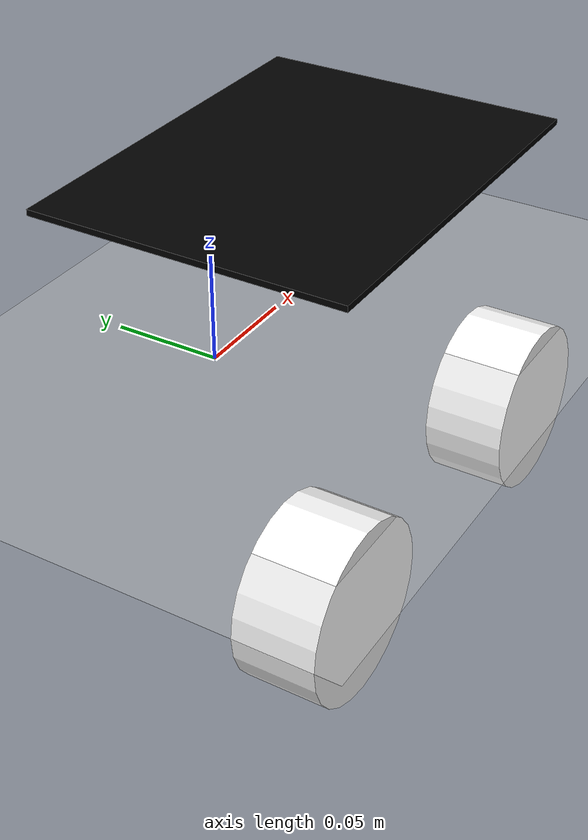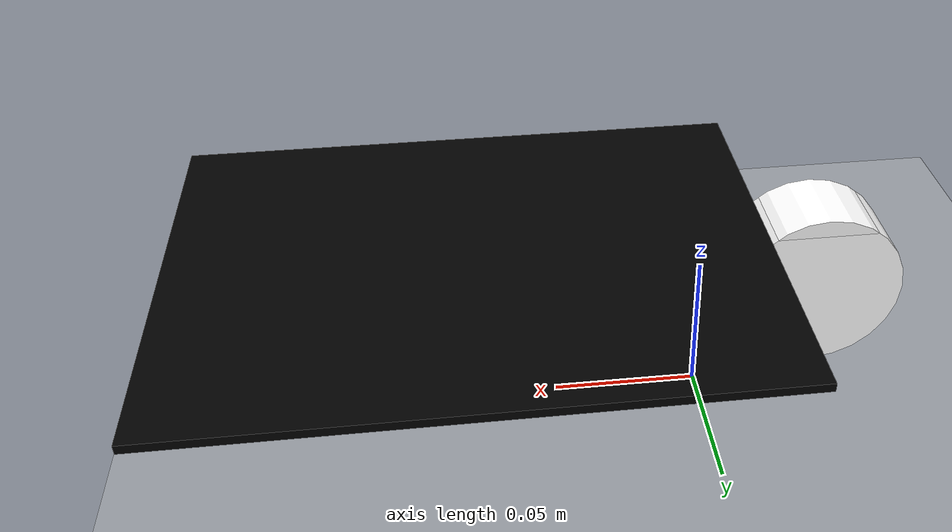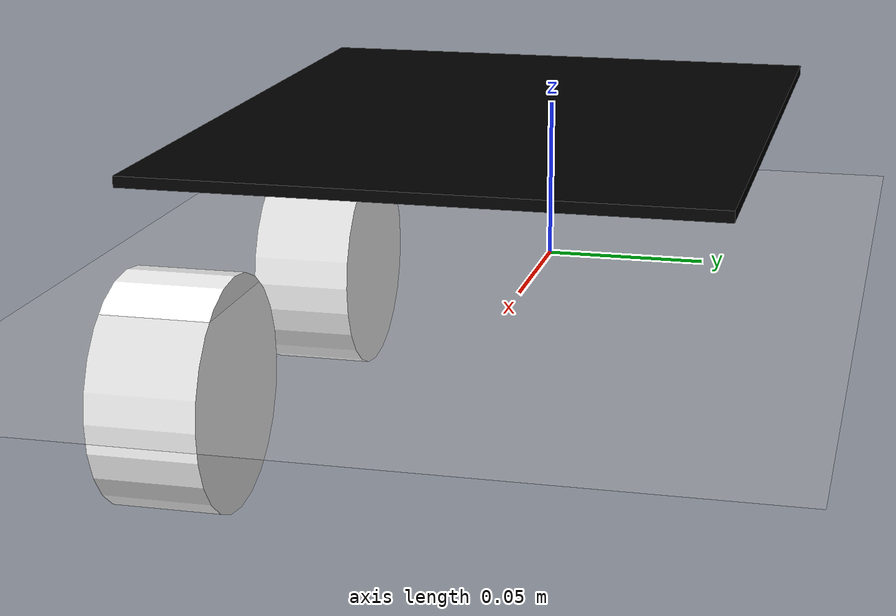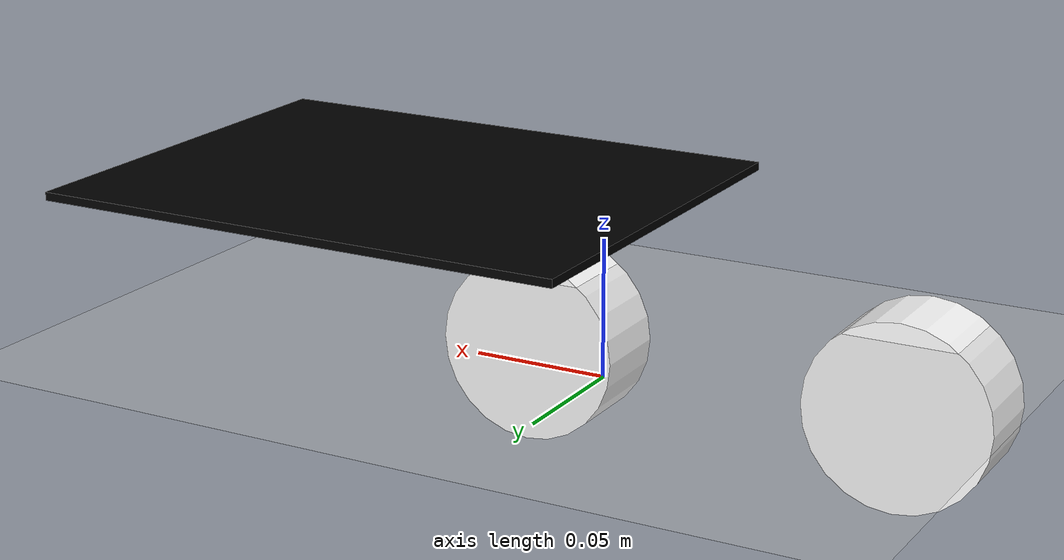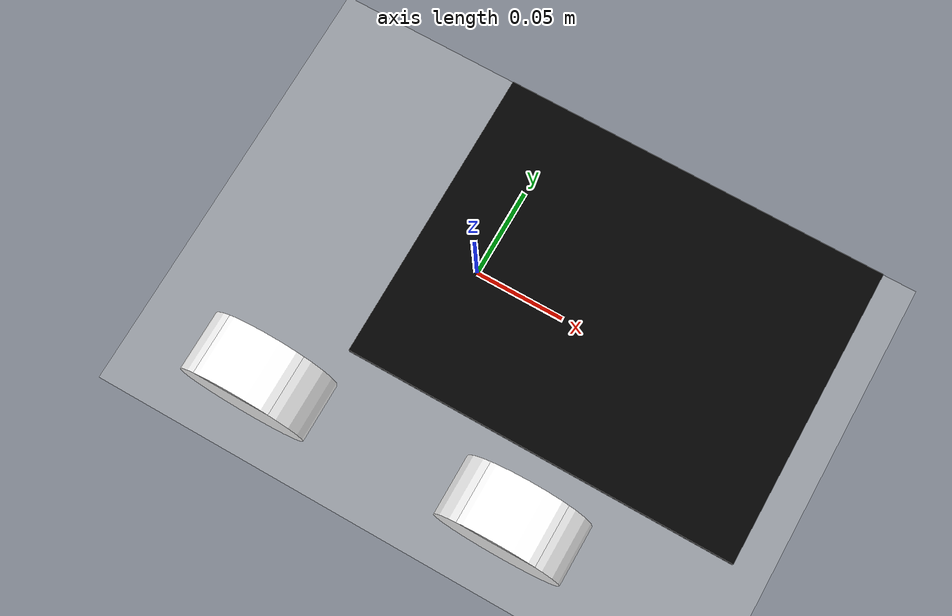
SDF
<?xml version="1.0" ?>
<sdf version="1.10">
    <world name="car_world">

        <frame name="world_frame"/>

        <!-- Physics -->
        <physics name="1ms" type="ignored">
            <max_step_size>0.001</max_step_size>
            <real_time_factor>1.0</real_time_factor>
        </physics>

        <!-- Gazebo plugins -->
        <plugin
            filename="gz-sim-physics-system"
            name="gz::sim::systems::Physics">
        </plugin>
        <plugin
            filename="gz-sim-user-commands-system"
            name="gz::sim::systems::UserCommands">
        </plugin>
        <plugin
            filename="gz-sim-scene-broadcaster-system"
            name="gz::sim::systems::SceneBroadcaster">
        </plugin>
        <plugin
            filename="gz-sim-contact-system"
            name="gz::sim::systems::Contact">
        </plugin>

        <light type="directional" name="sun">
            <cast_shadows>true</cast_shadows>
            <pose>0 0 10 0 0 0</pose>
            <diffuse>0.8 0.8 0.8 1</diffuse>
            <specular>0.2 0.2 0.2 1</specular>
            <attenuation>
                <range>1000</range>
                <constant>0.9</constant>
                <linear>0.01</linear>
                <quadratic>0.001</quadratic>
            </attenuation>
            <direction>-0.5 0.1 -0.9</direction>
        </light>

        <model name="ground_plane">
            <static>true</static>
            <link name="floor">
                <collision name="collision">
                <geometry>
                    <plane>
                    <normal>0 0 1</normal>
                    </plane>
                </geometry>
                </collision>
                <visual name="visual">
                <geometry>
                    <plane>
                    <normal>0 0 1</normal>
                    <size>100 100</size>
                    </plane>
                </geometry>
                <material>
                    <ambient>0.8 0.8 0.8 1</ambient>
                    <diffuse>0.8 0.8 0.8 1</diffuse>
                    <specular>0.8 0.8 0.8 1</specular>
                </material>
                </visual>
            </link>
        </model>

	<include>
            <uri>model://paquito/model.sdf</uri>

	    <pose relative_to='world_frame'>0 0 0 0 0 0</pose>
	</include>
    </world>
</sdf>

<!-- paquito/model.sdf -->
<sdf version="1.10">
    <model name='paquito' canonical_link='chassis'>
        <!--Gives error, fortunately world is default-->
        <link name='chassis'>
            <pose relative_to='__model__'>0.0775 0 0.06 0 0 0</pose>
            <inertial> <!--inertial properties of the link mass, inertia matix-->
                <!--https://amesweb.info/inertia/mass-moment-of-inertia-calculator.aspx-->
                <mass>0.1</mass>
                <inertia>
                    <ixx>0.00005</ixx>
                    <ixy>0</ixy>
                    <ixz>0</ixz>
                    <iyy>0.00003</iyy>
                    <iyz>0</iyz>
                    <izz>0.00008</izz>
                </inertia>
            </inertial>
            <visual name='visual'>
                <geometry>
                    <box>
                        <size>0.2 0.155 0.003</size>
                    </box>
                </geometry>
                <!--let's add color to our link-->
                <material>
                    <ambient>0.0 0.0 0.0 1</ambient>
                    <diffuse>0.0 0.0 0.0 1</diffuse>
                    <specular>0.0 0.0 0.0 1</specular>
                </material>
            </visual>
            <collision name='collision'>
                <geometry>
                    <box>
                        <size>0.2 0.115 0.003</size>
                    </box>
                </geometry>
            </collision>
        </link>
	<!-- Fails if I don't make an sdf per wheel -->
	<include>
		<uri>model://paquito/wheel.sdf</uri>
		<name>front_left_wheel</name>

		<pose relative_to="chassis">0.0775 -0.1 -0.03 -1.5707 0 0</pose>
	</include>

	<include>
		<uri>model://paquito/wheel.sdf</uri>
		<name>rear_left_wheel</name>

		<pose relative_to="chassis">-0.0775 -0.1 -0.03 -1.5707 0 0</pose>
	</include>
    </model>
</sdf>

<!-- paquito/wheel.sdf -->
<sdf version="1.10">
    <model name='omni_wheel' canonical_link='body'>
	    <link name="body">
		<inertial>
			<mass>0.01</mass>
			<inertia>
				<ixx>0.000005</ixx>
				<ixy>0</ixy>
				<ixz>0</ixz>
				<iyy>0.000005</iyy>
				<iyz>0</iyz>
				<izz>0.000007</izz>
			</inertia>
		</inertial>
		<visual name='visual'>
			<geometry>
				<cylinder>
					<radius>0.0375</radius>
					<length>0.035</length>
				</cylinder>
			</geometry>
			<material>
				<ambient>1.0 1.0 1.0 1</ambient>
				<diffuse>1.0 1.0 1.0 1</diffuse>
				<specular>1.0 1.0 1.0 1</specular>
			</material>
		</visual>
		<collision name='collision'>
			<geometry>
				<cylinder>
					<radius>0.0375</radius>
					<length>0.035</length>
				</cylinder>
			</geometry>
		</collision>
	    </link>
    </model>
</sdf>
